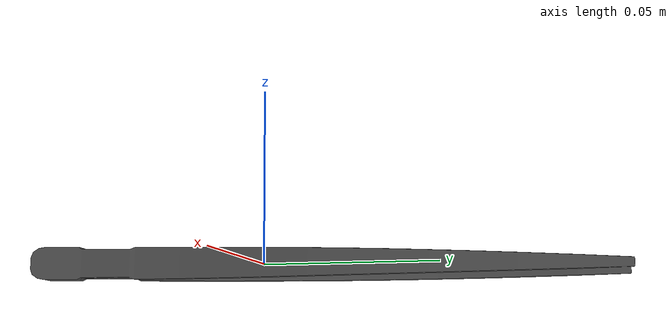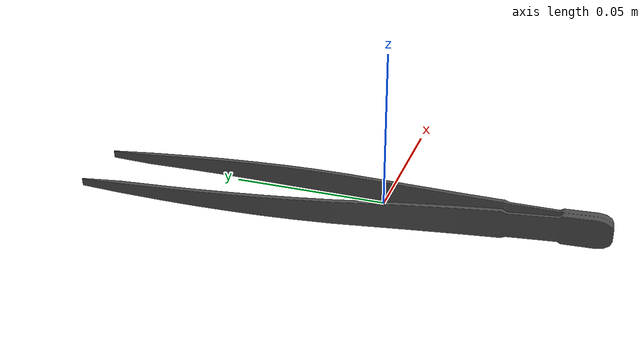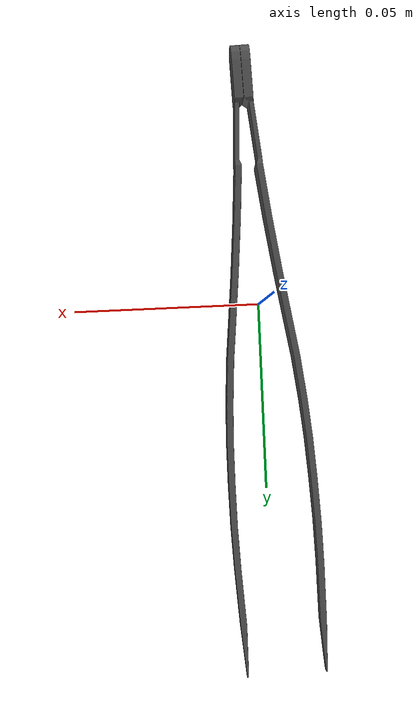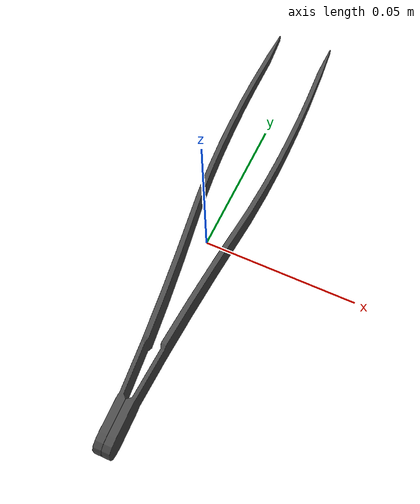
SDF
<?xml version="1.0"?>
<sdf version="1.9">
  <model name="tweezers">
    <static>false</static>
    <self_collide>false</self_collide>

    <link name="link">
      <inertial>
        <mass>0.02444</mass>
        <inertia>
          <ixx>0.0000501273</ixx>
          <ixy>0.0000020412</ixy>
          <ixz>0.0000000000</ixz>
          <iyy>0.0000020457</iyy>
          <iyz>0.0000000000</iyz>
          <izz>0.0000505440</izz>
        </inertia>
      </inertial>

      <collision name="collision">
        <geometry>
          <mesh>
            <uri>model://thesis/DAE/Tweezers/TweezersCollision20.dae</uri>
            <scale>1 1 1</scale>
          </mesh>
        </geometry>
        <surface>
          <contact>
            <ode>
              <max_vel>0.01</max_vel>
            </ode>
          </contact>
        </surface>
      </collision>

      <visual name="visual">
        <geometry>
          <mesh>
            <uri>model://thesis/DAE/Tweezers/Tweezers.dae</uri>
          </mesh>
        </geometry>
      </visual>
    </link>
  </model>
</sdf>
